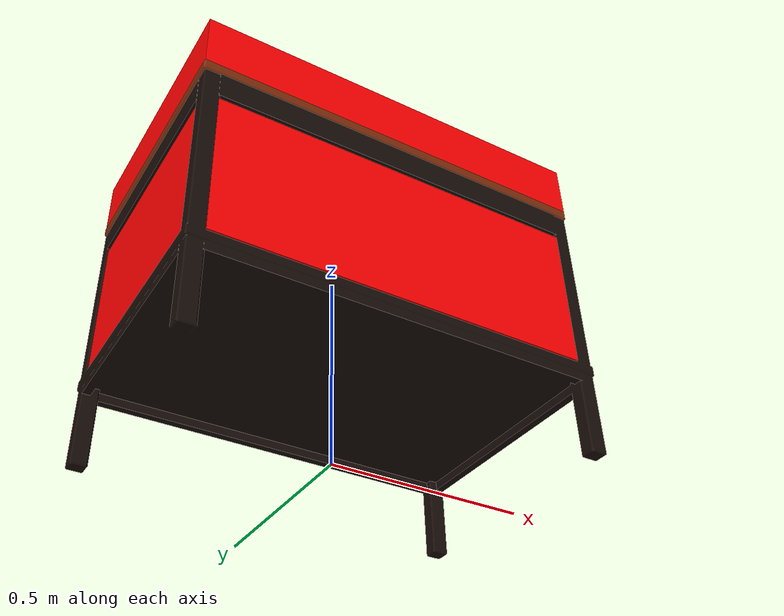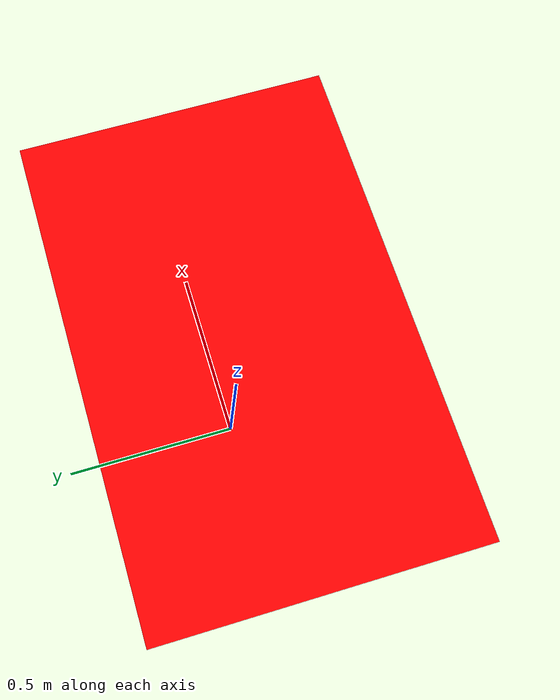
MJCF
<mujoco model="Side_Table_202_1">
  <compiler angle="radian" boundmass="0.01"/>

  <default>
    <default class="/">
      <default class="__VISUAL_MJT__">
        <geom contype="0" conaffinity="0"/>
      </default>
      <default class="__STRUCTURAL_MJT__">
        <geom contype="8" conaffinity="15" group="4" friction="0.9 0.9 0.001" solref="0.025" solimp="0.998 0.998"/>
      </default>
      <default class="__DYNAMIC_MJT__">
        <geom conaffinity="15" group="4" friction="0.9 0.9 0.001" solref="0.025" solimp="0.998 0.998"/>
      </default>
    </default>
  </default>

  <asset>
    <texture type="2d" name="DarkWoodSmooth2" file="assets/deep/WoodGrains1.png"/>
    <texture type="2d" name="LightWoodCounters3" file="assets/deep/LightWoodCounters.png"/>
    <material name="material_DarkWoodSmooth2" class="/" texture="DarkWoodSmooth2" rgba="0.122641 0.0908241 0.0908241 1"/>
    <material name="material_LightWoodCounters3" class="/" texture="LightWoodCounters3" rgba="0.698113 0.339363 0.135012 1"/>
    <mesh name="Side_Table_202_1_TableMesh_0" class="/" content_type="model/obj" file="assets/deep/Side_Table_202_1_TableMesh/Side_Table_202_1_TableMesh_0.obj"/>
    <mesh name="Side_Table_202_1_TableMesh_1" class="/" content_type="model/obj" file="assets/deep/Side_Table_202_1_TableMesh/Side_Table_202_1_TableMesh_1.obj"/>
  </asset>

  <worldbody>
    <body name="Side_Table_202_1" pos="0 0 0.357795" quat="0 0 0.7071067811865476 0.7071067811865476">
      <body name="Side_Table_202_1_TableMesh" pos="-0.003 -0.35105 -0.00031">
        <geom name="Side_Table_202_1_TableMesh_0" class="__VISUAL_MJT__" type="mesh" material="material_DarkWoodSmooth2" mesh="Side_Table_202_1_TableMesh_0" mass="0"/>
        <geom name="Side_Table_202_1_TableMesh_1" class="__VISUAL_MJT__" type="mesh" material="material_LightWoodCounters3" mesh="Side_Table_202_1_TableMesh_1" mass="0"/>
        <geom name="Side_Table_202_1_TableMesh_PrimitiveCollider_0" class="__DYNAMIC_MJT__" size="0.506008 0.0505326 0.324709" pos="-0.00600839 0.658312 0.000623584" quat="0 1 0 0" type="box" rgba="0 1 0 1" density="333.975"/>
        <geom name="Side_Table_202_1_TableMesh_PrimitiveCollider_1" class="__DYNAMIC_MJT__" size="0.506008 0.0255913 0.324709" pos="0 0.196 0" quat="0 1 0 0" type="box" rgba="0 1 0 1" density="333.975"/>
        <geom name="Side_Table_202_1_TableMesh_PrimitiveCollider_2" class="__DYNAMIC_MJT__" size="0.0219403 0.341932 0.0196934" pos="-0.487627 0.335187 0.3056" quat="0 1 0 0" type="box" rgba="0 1 0 1" density="333.975"/>
        <geom name="Side_Table_202_1_TableMesh_PrimitiveCollider_3" class="__DYNAMIC_MJT__" size="0.0219403 0.341932 0.0196934" pos="0.479273 0.335187 0.3056" quat="0 1 0 0" type="box" rgba="0 1 0 1" density="333.975"/>
        <geom name="Side_Table_202_1_TableMesh_PrimitiveCollider_4" class="__DYNAMIC_MJT__" size="0.0219403 0.341932 0.0196934" pos="-0.487627 0.335187 -0.302" quat="0 1 0 0" type="box" rgba="0 1 0 1" density="333.975"/>
        <geom name="Side_Table_202_1_TableMesh_PrimitiveCollider_5" class="__DYNAMIC_MJT__" size="0.0219403 0.341932 0.0196934" pos="0.479273 0.335187 -0.302" quat="0 1 0 0" type="box" rgba="0 1 0 1" density="333.975"/>
        <site name="Side_Table_202_1_TableMesh_Receptacle_0" class="/" pos="0 0.421709 0" quat="0 1 0 0" size="0.49969 0.187238 0.32302" type="box" rgba="1 0 0 1"/>
        <site name="Side_Table_202_1_TableMesh_Receptacle_1" class="/" pos="0 0.779649 0" quat="0 1 0 0" size="0.506221 0.074649 0.324535" type="box" rgba="1 0 0 1"/>
      </body>
    </body>
  </worldbody>
</mujoco>
